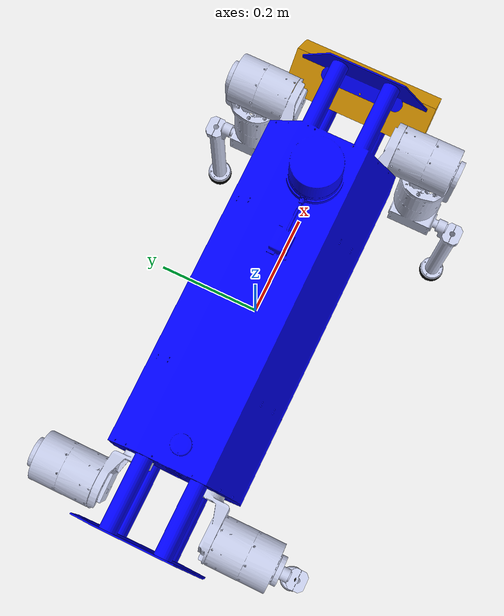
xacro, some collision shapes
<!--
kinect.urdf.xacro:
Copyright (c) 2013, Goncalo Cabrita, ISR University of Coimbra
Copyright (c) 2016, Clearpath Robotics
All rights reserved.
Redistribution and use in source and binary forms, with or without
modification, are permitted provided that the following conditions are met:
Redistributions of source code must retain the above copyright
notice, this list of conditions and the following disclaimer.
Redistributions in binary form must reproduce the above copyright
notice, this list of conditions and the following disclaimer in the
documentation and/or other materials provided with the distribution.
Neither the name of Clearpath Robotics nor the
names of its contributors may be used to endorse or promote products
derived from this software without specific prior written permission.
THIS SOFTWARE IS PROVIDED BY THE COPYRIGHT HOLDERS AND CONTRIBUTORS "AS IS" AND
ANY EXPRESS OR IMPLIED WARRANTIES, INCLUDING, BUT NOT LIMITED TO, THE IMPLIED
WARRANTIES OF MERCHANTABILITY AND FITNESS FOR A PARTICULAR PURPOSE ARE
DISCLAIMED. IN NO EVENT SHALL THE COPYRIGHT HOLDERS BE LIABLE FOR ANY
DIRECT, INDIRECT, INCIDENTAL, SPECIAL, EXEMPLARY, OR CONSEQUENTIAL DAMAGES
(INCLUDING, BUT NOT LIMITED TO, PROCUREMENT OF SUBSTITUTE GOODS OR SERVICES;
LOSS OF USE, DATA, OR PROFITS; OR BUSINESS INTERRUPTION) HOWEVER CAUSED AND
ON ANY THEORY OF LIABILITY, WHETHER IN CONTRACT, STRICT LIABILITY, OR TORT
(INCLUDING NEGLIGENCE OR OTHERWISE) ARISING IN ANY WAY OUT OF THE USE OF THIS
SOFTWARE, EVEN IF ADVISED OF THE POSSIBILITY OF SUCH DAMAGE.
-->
<?xml version="1.0" encoding="utf-8"?>
<robot name="quadruped_model" xmlns:xacro="http://ros.org/wiki/xacro">

  <xacro:arg name="laser_visual"  default="false"/>
  <xacro:arg name="camera_visual" default="false"/>
  <xacro:arg name="imu_visual"    default="false"/>
  <xacro:arg name="kinect_enabled"    default="true"/>
    <xacro:include filename="$(find simpledog)/urdf/simpledog_gazebo.urdf.xacro" />
    <xacro:include filename="$(find simpledog)/urdf/joint_gazebo.urdf.xacro" />
    <xacro:include filename="$(find simpledog)/urdf/kinect.urdf.xacro"/>
    <xacro:include filename="$(find simpledog)/urdf/foot_sensor_gazebo.urdf.xacro" />
  <!--load kinect urdf-->
  <xacro:if value="$(arg kinect_enabled)">
    <xacro:kinect_camera prefix="camera" robot_namespace="$(arg robot_namespace)"/>
    <joint name="kinect_frame_joint" type="fixed">
      <origin xyz="0.5 0.0 0.0" rpy="0 0.8 0" />
      <parent link="base_link"/>
      <child link="camera_link"/>
    </joint>
  </xacro:if>

  <!-- simple dog joints macros configure the joint driver and param-->
  <xacro:simpledog_joint joint_prefix="front_left_1_"> </xacro:simpledog_joint>
  <xacro:simpledog_joint joint_prefix="front_left_2_"> </xacro:simpledog_joint>
  <xacro:simpledog_joint joint_prefix="front_left_3_"> </xacro:simpledog_joint>
  <xacro:simpledog_joint joint_prefix="front_right_1_"> </xacro:simpledog_joint>
  <xacro:simpledog_joint joint_prefix="front_right_2_"> </xacro:simpledog_joint>
  <xacro:simpledog_joint joint_prefix="front_right_3_"> </xacro:simpledog_joint>
  <xacro:simpledog_joint joint_prefix="rear_right_1_"> </xacro:simpledog_joint>
  <xacro:simpledog_joint joint_prefix="rear_right_2_"> </xacro:simpledog_joint>
  <xacro:simpledog_joint joint_prefix="rear_right_3_"> </xacro:simpledog_joint>
  <xacro:simpledog_joint joint_prefix="rear_left_1_"> </xacro:simpledog_joint>
  <xacro:simpledog_joint joint_prefix="rear_left_2_"> </xacro:simpledog_joint>
  <xacro:simpledog_joint joint_prefix="rear_left_3_"> </xacro:simpledog_joint>

  <xacro:simpledog_foot_sensors foot_prefix="lf_foot" joint_prefix="front_left_3_"> </xacro:simpledog_foot_sensors>
  <xacro:simpledog_foot_sensors foot_prefix="rf_foot" joint_prefix="front_right_3_"> </xacro:simpledog_foot_sensors>
  <xacro:simpledog_foot_sensors foot_prefix="rh_foot" joint_prefix="rear_right_3_"> </xacro:simpledog_foot_sensors>
  <xacro:simpledog_foot_sensors foot_prefix="lh_foot" joint_prefix="rear_left_3_"> </xacro:simpledog_foot_sensors>

  <link
    name="base_link">
    <inertial>
      <origin
        xyz="0.006699 -0.000736 0.001288"
        rpy="0 0 0" />
      <mass
        value="27.801" />
      <inertia
        ixx="0.263947"
        ixy="-0.003647"
        ixz="0.009059"
        iyy="2.018039"
        iyz="-0.000762"
        izz="2.056397" />
    </inertial>
    <visual>
      <origin
        xyz="0 0 0"
        rpy="0 0 0" />
      <geometry>
        <mesh
          filename="package://simpledog/meshes/quadruped/base_link.STL" />
      </geometry>
      <material
        name="">
        <color
          rgba="0 0 1 1" />
      </material>
    </visual>
    <collision>
      <origin
        xyz="0 0 0"
        rpy="0 0 0" />
      <geometry>
        <mesh
          filename="package://simpledog/meshes/quadruped/base_link.STL" />
      </geometry>
    </collision>
  </link>
  <link
    name="front_left_1_Link">
    <inertial>
      <origin
        xyz="0.000688 0.10488 -0.003776"
        rpy="0 0 0" />
      <mass
        value="2.9231" />
      <inertia
        ixx="0.007845"
        ixy="-0.00025"
        ixz="-7.8E-05"
        iyy="0.005144"
        iyz="0.000967"
        izz="0.00794" />
    </inertial>
    <visual>
      <origin
        xyz="0 0 0"
        rpy="0 0 0" />
      <geometry>
        <mesh
          filename="package://simpledog/meshes/quadruped/Origin_front_left_1_link.STL" />
      </geometry>
      <material
        name="">
        <color
          rgba="0.79216 0.81961 0.93333 1" />
      </material>
    </visual>
    <collision>
      <origin
        xyz="0 0 0"
        rpy="0 0 0" />
      <geometry>
        <mesh
          filename="package://simpledog/meshes/quadruped/Origin_front_left_1_link.STL" />
      </geometry>
    </collision>
  </link>
  <joint
    name="front_left_1_joint"
    type="revolute">
    <origin
      xyz="0.427 0.075 -0.0095"
      rpy="0 1.5708 0" />
    <parent
      link="base_link" />
    <child
      link="front_left_1_Link" />
    <axis
      xyz="0 0 1" />
      <limit
      effort="300"
      velocity="10"
      lower="-3.0"
      upper="3.0"/>
    <dynamics damping="0.7"/>
  </joint>
  <link
    name="front_left_2_Link">
    <inertial>
      <origin
        xyz="0.18475 3.2E-05 0.12906"
        rpy="0 0 0" />
      <mass
        value="4.2164" />
      <inertia
        ixx="0.00627"
        ixy="-0.000181"
        ixz="-8.8E-05"
        iyy="0.029233"
        iyz="9.2E-05"
        izz="0.028163" />
    </inertial>
    <visual>
      <origin
        xyz="0 0 0"
        rpy="0 0 0" />
      <geometry>
        <mesh
          filename="package://simpledog/meshes/quadruped/Origin_front_left_2_link.STL" />
      </geometry>
      <material
        name="">
        <color
          rgba="0.79216 0.81961 0.93333 1" />
      </material>
    </visual>
    <collision>
      <origin
        xyz="0 0 0"
        rpy="0 0 0" />
      <geometry>
        <mesh
          filename="package://simpledog/meshes/quadruped/Origin_front_left_2_link.STL" />
      </geometry>
    </collision>
  </link>
  <joint
    name="front_left_2_joint"
    type="continuous">
    <origin
      xyz="0 0 0"
      rpy="-1.5708 0 0" />
    <parent
      link="front_left_1_Link" />
    <child
      link="front_left_2_Link" />
    <axis
      xyz="0 0 1" />
      <limit
      effort="300"
      velocity="10"
      lower="-7.0"
      upper="7.0"/>
    <dynamics damping="0.7"/>
  </joint>
  <link
    name="front_left_3_Link">
    <inertial>
      <origin
        xyz="0.20231 0.000199 0.22543"
        rpy="0 0 0" />
      <mass
        value="0.44457" />
      <inertia
        ixx="0.000397"
        ixy="-4E-06"
        ixz="0.000261"
        iyy="0.0065"
        iyz="-2.4E-05"
        izz="0.006214" />
    </inertial>
    <visual>
      <origin
        xyz="0 0 0"
        rpy="0 0 0" />
      <geometry>
        <mesh
          filename="package://simpledog/meshes/quadruped/Origin_front_left_3_link.STL" />
      </geometry>
      <material
        name="">
        <color
          rgba="0.79216 0.81961 0.93333 1" />
      </material>
    </visual>
    <collision>
      <origin
        xyz="0 0 0"
        rpy="0 0 0" />
      <geometry>
        <mesh
          filename="package://simpledog/meshes/quadruped/Origin_front_left_3_link.STL" />
      </geometry>
    </collision>
  </link>
  <joint
    name="front_left_3_joint"
    type="continuous">
    <origin
      xyz="0.308 0 0"
      rpy="0 0 0" />
    <parent
      link="front_left_2_Link" />
    <child
      link="front_left_3_Link" />
    <axis
      xyz="0 0 1" />
      <limit
      effort="300"
      velocity="10"
      lower="-3.0"
      upper="3.0"/>
      <dynamics damping="0.7"/>
  </joint>
  <link
    name="lf_foot_Link">
    <inertial>
      <origin
        xyz="0.022126 -1.2357E-13 0.00049896"
        rpy="0 0 0" />
      <mass
        value="0.03332" />
      <inertia
        ixx="1.9126E-05"
        ixy="-1.1072E-18"
        ixz="-4.1175E-20"
        iyy="0"
        iyz="1.5428E-10"
        izz="1.3678E-05" />
    </inertial>
    <visual>
      <origin
        xyz="0 0 0"
        rpy="0 0 0" />
      <geometry>
        <mesh
          filename="package://simpledog/meshes/quadruped/Origin_lf_foot_link.STL" />
      </geometry>
      <material
        name="">
        <color
          rgba="0 0 0 1" />
      </material>
    </visual>
    <collision>
      <origin
        xyz="0 0 0"
        rpy="0 0 0" />
      <geometry>
        <mesh
          filename="package://simpledog/meshes/quadruped/Origin_lf_foot_link.STL" />
      </geometry>
    </collision>
  </link>
  <joint
    name="lf_foot_joint"
    type="fixed">
    <origin
      xyz="0.308 0 0.23"
      rpy="0 0 0" />
    <parent
      link="front_left_3_Link" />
    <child
      link="lf_foot_Link" />
    <axis
      xyz="0 0 0" />
  </joint>
  <link
    name="front_right_1_Link">
    <inertial>
      <origin
        xyz="-0.000688 0.104882 0.003776"
        rpy="0 0 0" />
      <mass
        value="2.923111" />
      <inertia
        ixx="0.007845"
        ixy="0.00025"
        ixz="-7.8E-05"
        iyy="0.005144"
        iyz="-0.000967"
        izz="0.00794" />
    </inertial>
    <visual>
      <origin
        xyz="0 0 0"
        rpy="0 0 0" />
      <geometry>
        <mesh
          filename="package://simpledog/meshes/quadruped/Origin_front_right_1_link.STL" />
      </geometry>
      <material
        name="">
        <color
          rgba="0.79216 0.81961 0.93333 1" />
      </material>
    </visual>
    <collision>
      <origin
        xyz="0 0 0"
        rpy="0 0 0" />
      <geometry>
        <mesh
          filename="package://simpledog/meshes/quadruped/Origin_front_right_1_link.STL" />
      </geometry>
    </collision>
  </link>
  <joint
    name="front_right_1_joint"
    type="revolute">
    <origin
      xyz="0.427 -0.075 -0.0095"
      rpy="3.1416 1.5708 0" />
    <parent
      link="base_link" />
    <child
      link="front_right_1_Link" />
    <axis
      xyz="0 0 1" />
      <limit
      effort="300"
      velocity="10"
      lower="-3.0"
      upper="3.0"/>
    <dynamics damping="0.7"/>
  </joint>
  <link
    name="front_right_2_Link">
    <inertial>
      <origin
        xyz="0.184747 3.2E-05 0.129056"
        rpy="0 0 0" />
      <mass
        value="4.216358" />
      <inertia
        ixx="0.00627"
        ixy="-0.000181"
        ixz="-8.8E-05"
        iyy="0.029233"
        iyz="9.2E-05"
        izz="0.028163" />
    </inertial>
    <visual>
      <origin
        xyz="0 0 0"
        rpy="0 0 0" />
      <geometry>
        <mesh
          filename="package://simpledog/meshes/quadruped/Origin_front_right_2_link.STL" />
      </geometry>
      <material
        name="">
        <color
          rgba="0.79216 0.81961 0.93333 1" />
      </material>
    </visual>
    <collision>
      <origin
        xyz="0 0 0"
        rpy="0 0 0" />
      <geometry>
        <mesh
          filename="package://simpledog/meshes/quadruped/Origin_front_right_2_link.STL" />
      </geometry>
    </collision>
  </link>
  <joint
    name="front_right_2_joint"
    type="continuous">
    <origin
      xyz="0 0 0"
      rpy="-1.5708 0 0" />
    <parent
      link="front_right_1_Link" />
    <child
      link="front_right_2_Link" />
    <axis
      xyz="0 0 1" />
      <limit
      effort="300"
      velocity="10"
      lower="-7.0"
      upper="7.0"/>
    <dynamics damping="0.7"/>
  </joint>
  <link
    name="front_right_3_Link">
    <inertial>
      <origin
        xyz="0.202313 0.000199 0.225432"
        rpy="0 0 0" />
      <mass
        value="0.444569" />
      <inertia
        ixx="0.000397"
        ixy="-4E-06"
        ixz="0.000261"
        iyy="0.0065"
        iyz="-2.4E-05"
        izz="0.006214" />
    </inertial>
    <visual>
      <origin
        xyz="0 0 0"
        rpy="0 0 0" />
      <geometry>
        <mesh
          filename="package://simpledog/meshes/quadruped/Origin_front_right_3_link.STL" />
      </geometry>
      <material
        name="">
        <color
          rgba="0.79216 0.81961 0.93333 1" />
      </material>
    </visual>
    <collision>
      <origin
        xyz="0 0 0"
        rpy="0 0 0" />
      <geometry>
        <mesh
          filename="package://simpledog/meshes/quadruped/Origin_front_right_3_link.STL" />
      </geometry>
    </collision>
  </link>
  <joint
    name="front_right_3_joint"
    type="continuous">
    <origin
      xyz="0.308 0 0"
      rpy="0 0 0" />
    <parent
      link="front_right_2_Link" />
    <child
      link="front_right_3_Link" />
    <axis
      xyz="0 0 1" />
      <limit
      effort="300"
      velocity="10"
      lower="-3.0"
      upper="3.0"/>
    <dynamics damping="0.7"/>
  </joint>
  <link
    name="rf_foot_Link">
    <inertial>
      <origin
        xyz="0.022126 -4.4892E-13 -1.0375E-06"
        rpy="0 0 0" />
      <mass
        value="0.03332" />
      <inertia
        ixx="1.9126E-05"
        ixy="-1.0162E-18"
        ixz="-1.1377E-19"
        iyy="1.3677E-05"
        iyz="-6.5798E-11"
        izz="1.3678E-05" />
    </inertial>
    <visual>
      <origin
        xyz="0 0 0"
        rpy="0 0 0" />
      <geometry>
        <mesh
          filename="package://simpledog/meshes/quadruped/Orgin_rf_foot_link.STL" />
      </geometry>
      <material
        name="">
        <color
          rgba="0 0 0 1" />
      </material>
    </visual>
    <collision>
      <origin
        xyz="0 0 0"
        rpy="0 0 0" />
      <geometry>
        <mesh
          filename="package://simpledog/meshes/quadruped/Orgin_rf_foot_link.STL" />
      </geometry>
    </collision>
  </link>
  <joint
    name="rf_foot_Link"
    type="fixed">
    <origin
      xyz="0.308 0 0.22053"
      rpy="0 0 0" />
    <parent
      link="front_right_3_Link" />
    <child
      link="rf_foot_Link" />
    <axis
      xyz="0 0 0" />
  </joint>
  <link
    name="rear_left_1_Link">
    <inertial>
      <origin
        xyz="-0.000688 0.10488 0.003776"
        rpy="0 0 0" />
      <mass
        value="2.9231" />
      <inertia
        ixx="0.007845"
        ixy="0.0025"
        ixz="-7.8E-05"
        iyy="0.005144"
        iyz="-0.000967"
        izz="0.00794" />
    </inertial>
    <visual>
      <origin
        xyz="0 0 0"
        rpy="0 0 0" />
      <geometry>
        <mesh
          filename="package://simpledog/meshes/quadruped/Origin_rear_left_1_link.STL" />
      </geometry>
      <material
        name="">
        <color
          rgba="0.79216 0.81961 0.93333 1" />
      </material>
    </visual>
    <collision>
      <origin
        xyz="0 0 0"
        rpy="0 0 0" />
      <geometry>
        <mesh
          filename="package://simpledog/meshes/quadruped/Origin_rear_left_1_link.STL" />
      </geometry>
    </collision>
  </link>
  <joint
    name="rear_left_1_joint"
    type="revolute">
    <origin
      xyz="-0.427 0.075 -0.0095"
      rpy="0 1.5708 0" />
    <parent
      link="base_link" />
    <child
      link="rear_left_1_Link" />
    <axis
      xyz="0 0 1" />
      <limit
      effort="300"
      velocity="10"
      lower="-3.0"
      upper="3.0"/>
    <dynamics damping="0.7"/>
  </joint>
  <link
    name="rear_left_2_Link">
    <inertial>
      <origin
        xyz="0.184717 3.2E-05 0.129056"
        rpy="0 0 0" />
      <mass
        value="4.216358" />
      <inertia
        ixx="0.00627"
        ixy="-0.000181"
        ixz="-8.8E-05"
        iyy="0.029233"
        iyz="9.2E-05"
        izz="0.028163" />
    </inertial>
    <visual>
      <origin
        xyz="0 0 0"
        rpy="0 0 0" />
      <geometry>
        <mesh
          filename="package://simpledog/meshes/quadruped/Origin_rear_left_2_link.STL" />
      </geometry>
      <material
        name="">
        <color
          rgba="0.79216 0.81961 0.93333 1" />
      </material>
    </visual>
    <collision>
      <origin
        xyz="0 0 0"
        rpy="0 0 0" />
      <geometry>
        <mesh
          filename="package://simpledog/meshes/quadruped/Origin_rear_left_2_link.STL" />
      </geometry>
    </collision>
  </link>
  <joint
    name="rear_left_2_joint"
    type="continuous">
    <origin
      xyz="0 0 0"
      rpy="-1.5708 0 0" />
    <parent
      link="rear_left_1_Link" />
    <child
      link="rear_left_2_Link" />
    <axis
      xyz="0 0 1" />
      <limit
      effort="300"
      velocity="10"
      lower="-7.0"
      upper="7.0"/>
    <dynamics damping="0.7"/>
  </joint>
  <link
    name="rear_left_3_Link">
    <inertial>
      <origin
        xyz="0.202313 0.000199 0.225432"
        rpy="0 0 0" />
      <mass
        value="0.444569" />
      <inertia
        ixx="0.000397"
        ixy="-4E-06"
        ixz="-0.000261"
        iyy="0.0065"
        iyz="-2.4E-05"
        izz="0.006214" />
    </inertial>
    <visual>
      <origin
        xyz="0 0 0"
        rpy="0 0 0" />
      <geometry>
        <mesh
          filename="package://simpledog/meshes/quadruped/Origin_rear_left_3_link.STL" />
      </geometry>
      <material
        name="">
        <color
          rgba="0.79216 0.81961 0.93333 1" />
      </material>
    </visual>
    <collision>
      <origin
        xyz="0 0 0"
        rpy="0 0 0" />
      <geometry>
        <mesh
          filename="package://simpledog/meshes/quadruped/Origin_rear_left_3_link.STL" />
      </geometry>
    </collision>
  </link>
  <joint
    name="rear_left_3_joint"
    type="continuous">
    <origin
      xyz="0.308 0 0"
      rpy="0 0 0" />
    <parent
      link="rear_left_2_Link" />
    <child
      link="rear_left_3_Link" />
    <axis
      xyz="0 0 1" />
      <limit
      effort="300"
      velocity="10"
      lower="-3.0"
      upper="3.0"/>
    <dynamics damping="0.7"/>
  </joint>
  <link
    name="lh_foot_Link">
    <inertial>
      <origin
        xyz="0.022126 -7.7827E-14 0.00049896"
        rpy="0 0 0" />
      <mass
        value="0.03332" />
      <inertia
        ixx="1.9126E-05"
        ixy="-9.3607E-19"
        ixz="2.2915E-19"
        iyy="1.3677E-05"
        iyz="-2.7943E-10"
        izz="1.3678E-05" />
    </inertial>
    <visual>
      <origin
        xyz="0 0 0"
        rpy="0 0 0" />
      <geometry>
        <mesh
          filename="package://simpledog/meshes/quadruped/Origin_rl_foot_link.STL" />
      </geometry>
      <material
        name="">
        <color
          rgba="0 0 0 1" />
      </material>
    </visual>
    <collision>
      <origin
        xyz="0 0 0"
        rpy="0 0 0" />
      <geometry>
        <mesh
          filename="package://simpledog/meshes/quadruped/Origin_rl_foot_link.STL" />
      </geometry>
    </collision>
  </link>
  <joint
    name="lh_foot_joint"
    type="fixed">
    <origin
      xyz="0.308 0 0.23"
      rpy="0 0 0" />
    <parent
      link="rear_left_3_Link" />
    <child
      link="lh_foot_Link" />
    <axis
      xyz="0 0 0" />
  </joint>
  <link
    name="rear_right_1_Link">
    <inertial>
      <origin
        xyz="0.000688 0.104882 0.003776"
        rpy="0 0 0" />
      <mass
        value="2.923111" />
      <inertia
        ixx="0.007845"
        ixy="-0.00025"
        ixz="7.8E-05"
        iyy="0.005144"
        iyz="0.000967"
        izz="0.00794" />
    </inertial>
    <visual>
      <origin
        xyz="0 0 0"
        rpy="0 0 0" />
      <geometry>
        <mesh
          filename="package://simpledog/meshes/quadruped/Origin_rear_right_1_link.STL" />
      </geometry>
      <material
        name="">
        <color
          rgba="0.79216 0.81961 0.93333 1" />
      </material>
    </visual>
    <collision>
      <origin
        xyz="0 0 0"
        rpy="0 0 0" />
      <geometry>
        <mesh
          filename="package://simpledog/meshes/quadruped/Origin_rear_right_1_link.STL" />
      </geometry>
    </collision>
  </link>
  <joint
    name="rear_right_1_joint"
    type="revolute">
    <origin
      xyz="-0.427 -0.075 -0.0095"
      rpy="3.1416 1.5708 0" />
    <parent
      link="base_link" />
    <child
      link="rear_right_1_Link" />
    <axis
      xyz="0 0 1" />
      <limit
      effort="300"
      velocity="10"
      lower="-3.0"
      upper="3.0"/>
    <dynamics damping="0.7"/>
  </joint>
  <link
    name="rear_right_2_Link">
    <inertial>
      <origin
        xyz="0.184747 3.2E-05 0.129056"
        rpy="0 0 0" />
      <mass
        value="4.216358" />
      <inertia
        ixx="0.00627"
        ixy="-0.000181"
        ixz="-8.8E-05"
        iyy="0.029233"
        iyz="9.2E-05"
        izz="0.028163" />
    </inertial>
    <visual>
      <origin
        xyz="0 0 0"
        rpy="0 0 0" />
      <geometry>
        <mesh
          filename="package://simpledog/meshes/quadruped/Origin_rear_right_2_link.STL" />
      </geometry>
      <material
        name="">
        <color
          rgba="0.79216 0.81961 0.93333 1" />
      </material>
    </visual>
    <collision>
      <origin
        xyz="0 0 0"
        rpy="0 0 0" />
      <geometry>
        <mesh
          filename="package://simpledog/meshes/quadruped/Origin_rear_right_2_link.STL" />
      </geometry>
    </collision>
  </link>
  <joint
    name="rear_right_2_joint"
    type="continuous">
    <origin
      xyz="0 0 0"
      rpy="-1.5708 0 0" />
    <parent
      link="rear_right_1_Link" />
    <child
      link="rear_right_2_Link" />
    <axis
      xyz="0 0 1" />
      <limit
      effort="300"
      velocity="10"
      lower="-7.0"
      upper="7.0"/>
    <dynamics damping="0.7"/>
  </joint>
  <link
    name="rear_right_3_Link">
    <inertial>
      <origin
        xyz="0.202313 0.000199 0.225432"
        rpy="0 0 0" />
      <mass
        value="0.444569" />
      <inertia
        ixx="0.000397"
        ixy="-4E-06"
        ixz="0.000261"
        iyy="0.0065"
        iyz="-2.4E-05"
        izz="0.006214" />
    </inertial>
    <visual>
      <origin
        xyz="0 0 0"
        rpy="0 0 0" />
      <geometry>
        <mesh
          filename="package://simpledog/meshes/quadruped/Origin_rear_right_3_link.STL" />
      </geometry>
      <material
        name="">
        <color
          rgba="0.79216 0.81961 0.93333 1" />
      </material>
    </visual>
    <collision>
      <origin
        xyz="0 0 0"
        rpy="0 0 0" />
      <geometry>
        <mesh
          filename="package://simpledog/meshes/quadruped/Origin_rear_right_3_link.STL" />
      </geometry>
    </collision>
  </link>
  <joint
    name="rear_right_3_joint"
    type="continuous">
    <origin
      xyz="0.308 0 0"
      rpy="0 0 0" />
    <parent
      link="rear_right_2_Link" />
    <child
      link="rear_right_3_Link" />
    <axis
      xyz="0 0 1" />
      <limit
      effort="300"
      velocity="10"
      lower="-3.0"
      upper="3.0"/>
    <dynamics damping="0.7"/>
  </joint>
  <link
    name="rh_foot_Link">
    <inertial>
      <origin
        xyz="0.022126 -1.6187E-13 -1E-06"
        rpy="0 0 0" />
      <mass
        value="0.03332" />
      <inertia
        ixx="1.9126E-05"
        ixy="-9.5089E-19"
        ixz="6.7668E-20"
        iyy="1.3677E-05"
        iyz="-2.7242E-10"
        izz="1.3678E-05" />
    </inertial>
    <visual>
      <origin
        xyz="0 0 0"
        rpy="0 0 0" />
      <geometry>
        <mesh
          filename="package://simpledog/meshes/quadruped/Origin_rr_foot_link.STL" />
      </geometry>
      <material
        name="">
        <color
          rgba="0 0 0 1" />
      </material>
    </visual>
    <collision>
      <origin
        xyz="0 0 0"
        rpy="0 0 0" />
      <geometry>
        <mesh
          filename="package://simpledog/meshes/quadruped/Origin_rr_foot_link.STL" />
      </geometry>
    </collision>
  </link>
  <joint
    name="rh_foot_joint"
    type="fixed">
    <origin
      xyz="0.308 0 0.22053"
      rpy="0 0 0" />
    <parent
      link="rear_right_3_Link" />
    <child
      link="rh_foot_Link" />
    <axis
      xyz="0 0 0" />
  </joint>
</robot>

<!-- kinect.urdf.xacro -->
<robot xmlns:xacro="http://ros.org/wiki/xacro" name="kinect_camera">

  <xacro:macro name="kinect_camera" params="prefix:=camera robot_namespace:=/">
    <!-- Create kinect reference frame -->
    <!-- Add mesh for kinect -->
    <link name="${prefix}_link">
      <origin xyz="0 0 0" rpy="0 0 0"/>
      <mass
        value="1.238" />
      <visual>
        <origin xyz="0 0 0" rpy="0 0 1.5708"/>
        <geometry>
          <mesh filename="package://simpledog/meshes/kinect.dae" />
        </geometry>
      </visual>
      <collision>
        <geometry>
          <box size="0.07 0.3 0.09"/>
        </geometry>
      </collision>
    </link>

    <joint name="${prefix}_optical_joint" type="fixed">
      <origin xyz="0 0 0" rpy="-1.5708 0 -1.5708"/>
      <parent link="${prefix}_link"/>
      <child link="${prefix}_frame_optical"/>
    </joint>

    <link name="${prefix}_frame_optical"/>

    <gazebo reference="${prefix}_link">
      <sensor type="depth" name="${prefix}">
        <always_on>true</always_on>
        <update_rate>10.0</update_rate>
        <camera>
          <horizontal_fov>${60.0*3.14/180.0}</horizontal_fov>
          <image>
            <format>R8G8B8</format>
            <width>640</width>
            <height>480</height>
          </image>
          <clip>
            <near>0.05</near>
            <far>8.0</far>
          </clip>
        </camera>
        <plugin name="kinect_${prefix}_controller" filename="libgazebo_ros_openni_kinect.so">
          <cameraName>${prefix}</cameraName>
          <alwaysOn>true</alwaysOn>
          <updateRate>10.0</updateRate>
          <pointCloudTopicName>depth/points</pointCloudTopicName>
          <cameraInfoTopicName>rgb/camera_info</cameraInfoTopicName>
          <depthImageCameraInfoTopicName>depth/camera_info</depthImageCameraInfoTopicName>
          <frameName>${prefix}_frame_optical</frameName>
          <baseline>0.1</baseline>
          <distortion_k1>0.0</distortion_k1>
          <distortion_k2>0.0</distortion_k2>
          <distortion_k3>0.0</distortion_k3>
          <distortion_t1>0.0</distortion_t1>
          <distortion_t2>0.0</distortion_t2>
          <pointCloudCutoff>0.4</pointCloudCutoff>
          <robotNamespace>${robot_namespace}</robotNamespace>
        </plugin>
      </sensor>
    </gazebo>
  </xacro:macro>
</robot>
